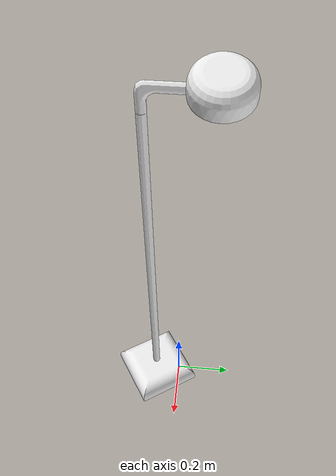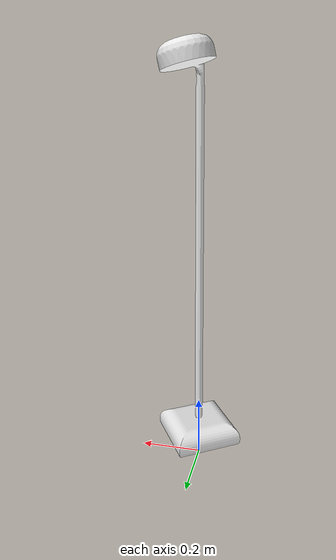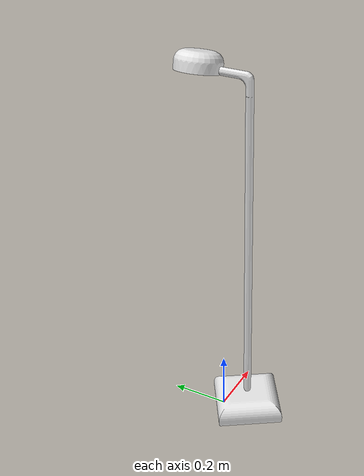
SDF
<?xml version="1.0" ?>
<sdf version="1.5">
  <model name="lamp">
    <static>false</static>
    <link name="link">
      <collision name="collision">
        <geometry>
         <mesh>
		  <scale>0.075 0.075 0.075</scale>
          <uri>model://lamp/meshes/lamp.dae</uri>
         </mesh>
        </geometry>
        <surface>
          <friction>
            <ode>
              <mu>100</mu>
              <mu2>50</mu2>
            </ode>
          </friction>
        </surface>
      </collision>
      <visual name="visual">
        <cast_shadows>true</cast_shadows>
        <geometry>
		 <mesh>
		  <scale>0.075 0.075 0.075</scale>
          <uri>model://lamp/meshes/lamp.dae</uri>
         </mesh>
        </geometry>
        <material>
          <script>
            <uri>file://media/materials/scripts/gazebo.material</uri>
            <name>Gazebo/White</name>
          </script>
        </material>
      </visual>
    </link>
  </model>
</sdf>
